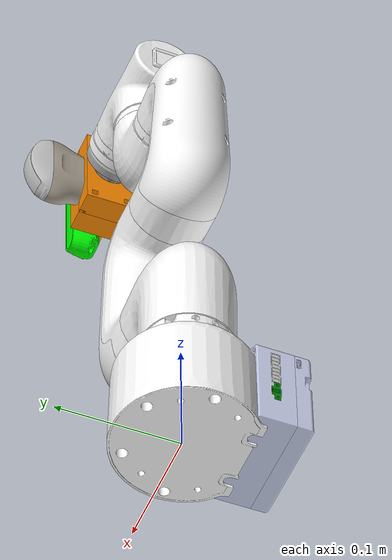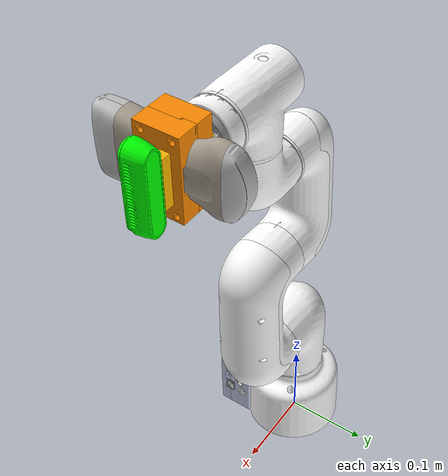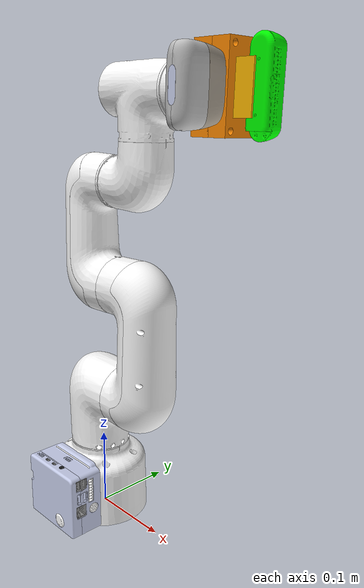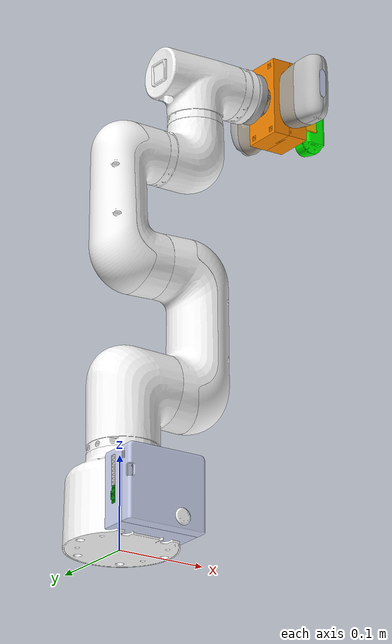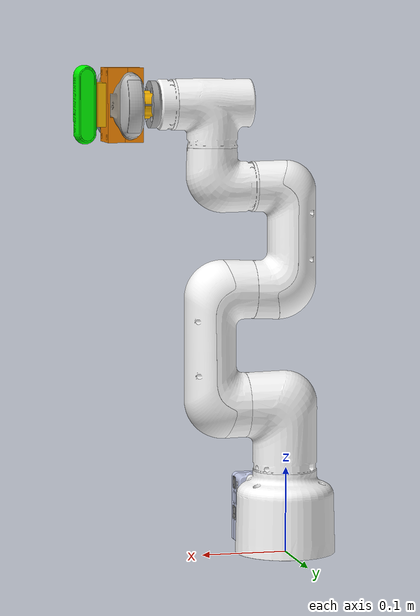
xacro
<?xml version="1.0"?>
<robot xmlns:xacro="http://www.ros.org/wiki/xacro" name="cobot_description">
    <xacro:arg name="initial_positions_file" default="initial_positions.yaml" />

    <!-- Import cobot_description urdf file -->
    <xacro:include filename="$(find cobot_description)/robot.urdf" />

    <!-- Import control_xacro -->
    <xacro:include filename="cobot_description.ros2_control.xacro" />

    <xacro:cobot_description_ros2_control name="FakeSystem" initial_positions_file="$(arg initial_positions_file)"/>

</robot>

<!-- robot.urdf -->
<!-- Generated using onshape-to-robot -->
<!-- Updated with realistic mass and physics properties for myCobot 320 Pi -->
<!-- Total mass: 3.3 kg | Payload: 1.0 kg | Working radius: 350 mm -->
<!-- Joint limits: J1-J5: ±165°, J6: ±175° -->
<!-- Servo stall torque: 4.5 kg·cm (0.441 N·m) @ 6V -->
<robot name="cobot_description">
  <!-- Link ground_link -->
  <link name="ground_link">
    <inertial>
      <origin xyz="6.59565e-05 -0.00516834 0.0507839" rpy="0 0 0"/>
      <mass value="1.200"/>
      <inertia ixx="0.002440" ixy="-9.01946e-08" ixz="-7.79986e-08" iyy="0.002440" iyz="4.7038e-05" izz="0.002880"/>
    </inertial>
    <!-- Part link_1 -->
    <visual>
      <origin xyz="-4.83452e-05 -0.00581885 0.0939" rpy="5.54959e-17 2.95734e-17 3.14159"/>
      <geometry>
        <mesh filename="package://assets/link_1.stl"/>
      </geometry>
      <material name="link_1_material">
        <color rgba="1 1 1 1"/>
      </material>
    </visual>
    <collision>
      <origin xyz="-4.83452e-05 -0.00581885 0.0939" rpy="5.54959e-17 2.95734e-17 3.14159"/>
      <geometry>
        <mesh filename="package://assets/link_1.stl"/>
      </geometry>
    </collision>
    <!-- Part w_pi模组 -->
    <visual>
      <origin xyz="-0.00055657 0.217894 0.10312" rpy="5.54959e-17 -2.59377e-17 -3.14159"/>
      <geometry>
        <mesh filename="package://assets/w_pi模组.stl"/>
      </geometry>
      <material name="w_pi模组_material">
        <color rgba="0.792157 0.819608 0.933333 1"/>
      </material>
    </visual>
    <collision>
      <origin xyz="-0.00055657 0.217894 0.10312" rpy="5.54959e-17 -2.59377e-17 -3.14159"/>
      <geometry>
        <mesh filename="package://assets/w_pi模组.stl"/>
      </geometry>
    </collision>
    <!-- Part w_pi模组_2 -->
    <visual>
      <origin xyz="0.000143428 0.217694 0.10312" rpy="5.54959e-17 -2.59377e-17 -3.14159"/>
      <geometry>
        <mesh filename="package://assets/w_pi模组__2.stl"/>
      </geometry>
      <material name="w_pi模组_2_material">
        <color rgba="0 0.541176 0.027451 1"/>
      </material>
    </visual>
    <collision>
      <origin xyz="0.000143428 0.217694 0.10312" rpy="5.54959e-17 -2.59377e-17 -3.14159"/>
      <geometry>
        <mesh filename="package://assets/w_pi模组__2.stl"/>
      </geometry>
    </collision>
    <!-- Part w_pi模组_3 -->
    <visual>
      <origin xyz="0.000764899 0.216504 0.102548" rpy="5.54959e-17 -2.59377e-17 -3.14159"/>
      <geometry>
        <mesh filename="package://assets/w_pi模组__3.stl"/>
      </geometry>
      <material name="w_pi模组_3_material">
        <color rgba="0.792157 0.819608 0.933333 1"/>
      </material>
    </visual>
    <collision>
      <origin xyz="0.000764899 0.216504 0.102548" rpy="5.54959e-17 -2.59377e-17 -3.14159"/>
      <geometry>
        <mesh filename="package://assets/w_pi模组__3.stl"/>
      </geometry>
    </collision>
    <!-- Part w_pi模组_4 -->
    <visual>
      <origin xyz="-5.65655e-05 0.217504 0.10332" rpy="5.68886e-17 -2.25793e-17 -3.14159"/>
      <geometry>
        <mesh filename="package://assets/w_pi模组__4.stl"/>
      </geometry>
      <material name="w_pi模组_4_material">
        <color rgba="0.14902 0.14902 0.14902 1"/>
      </material>
    </visual>
    <collision>
      <origin xyz="-5.65655e-05 0.217504 0.10332" rpy="5.68886e-17 -2.25793e-17 -3.14159"/>
      <geometry>
        <mesh filename="package://assets/w_pi模组__4.stl"/>
      </geometry>
    </collision>
    <!-- Part w_pi模组_5 -->
    <visual>
      <origin xyz="-0.000641694 0.217694 0.103118" rpy="5.54959e-17 -2.59377e-17 -3.14159"/>
      <geometry>
        <mesh filename="package://assets/w_pi模组__5.stl"/>
      </geometry>
      <material name="w_pi模组_5_material">
        <color rgba="1 1 1 1"/>
      </material>
    </visual>
    <collision>
      <origin xyz="-0.000641694 0.217694 0.103118" rpy="5.54959e-17 -2.59377e-17 -3.14159"/>
      <geometry>
        <mesh filename="package://assets/w_pi模组__5.stl"/>
      </geometry>
    </collision>
    <!-- Part w_pi模组_6 -->
    <visual>
      <origin xyz="0.000305428 0.217529 0.103164" rpy="5.68886e-17 -2.25793e-17 -3.14159"/>
      <geometry>
        <mesh filename="package://assets/w_pi模组__6.stl"/>
      </geometry>
      <material name="w_pi模组_6_material">
        <color rgba="1 1 1 1"/>
      </material>
    </visual>
    <collision>
      <origin xyz="0.000305428 0.217529 0.103164" rpy="5.68886e-17 -2.25793e-17 -3.14159"/>
      <geometry>
        <mesh filename="package://assets/w_pi模组__6.stl"/>
      </geometry>
    </collision>
    <!-- Part w_pi模组_7 -->
    <visual>
      <origin xyz="-5.65717e-05 0.217494 0.10312" rpy="5.54959e-17 -2.59377e-17 -3.14159"/>
      <geometry>
        <mesh filename="package://assets/w_pi模组__7.stl"/>
      </geometry>
      <material name="w_pi模组_7_material">
        <color rgba="0.792157 0.819608 0.933333 1"/>
      </material>
    </visual>
    <collision>
      <origin xyz="-5.65717e-05 0.217494 0.10312" rpy="5.54959e-17 -2.59377e-17 -3.14159"/>
      <geometry>
        <mesh filename="package://assets/w_pi模组__7.stl"/>
      </geometry>
    </collision>
    <!-- Part w_pi模组_8 -->
    <visual>
      <origin xyz="-0.000256571 0.217494 0.10312" rpy="-1.14798e-10 -8.70913e-09 -3.14159"/>
      <geometry>
        <mesh filename="package://assets/w_pi模组__8.stl"/>
      </geometry>
      <material name="w_pi模组_8_material">
        <color rgba="1 1 1 1"/>
      </material>
    </visual>
    <collision>
      <origin xyz="-0.000256571 0.217494 0.10312" rpy="-1.14798e-10 -8.70913e-09 -3.14159"/>
      <geometry>
        <mesh filename="package://assets/w_pi模组__8.stl"/>
      </geometry>
    </collision>
    <!-- Part w_pi模组_9 -->
    <visual>
      <origin xyz="-5.65655e-05 0.218004 0.103019" rpy="5.54959e-17 -2.59377e-17 -3.14159"/>
      <geometry>
        <mesh filename="package://assets/w_pi模组__9.stl"/>
      </geometry>
      <material name="w_pi模组_9_material">
        <color rgba="0.556863 0.556863 0.556863 1"/>
      </material>
    </visual>
    <collision>
      <origin xyz="-5.65655e-05 0.218004 0.103019" rpy="5.54959e-17 -2.59377e-17 -3.14159"/>
      <geometry>
        <mesh filename="package://assets/w_pi模组__9.stl"/>
      </geometry>
    </collision>
    <!-- Part w_pi模组_10 -->
    <visual>
      <origin xyz="-5.65655e-05 0.217494 0.10312" rpy="5.54959e-17 -2.59377e-17 -3.14159"/>
      <geometry>
        <mesh filename="package://assets/w_pi模组__10.stl"/>
      </geometry>
      <material name="w_pi模组_10_material">
        <color rgba="0.792157 0.819608 0.933333 1"/>
      </material>
    </visual>
    <collision>
      <origin xyz="-5.65655e-05 0.217494 0.10312" rpy="5.54959e-17 -2.59377e-17 -3.14159"/>
      <geometry>
        <mesh filename="package://assets/w_pi模组__10.stl"/>
      </geometry>
    </collision>
    <!-- Part w_pi模组_11 -->
    <visual>
      <origin xyz="-5.65656e-05 0.218004 0.103319" rpy="5.54959e-17 -2.59377e-17 -3.14159"/>
      <geometry>
        <mesh filename="package://assets/w_pi模组__11.stl"/>
      </geometry>
      <material name="w_pi模组_11_material">
        <color rgba="0.792157 0.819608 0.933333 1"/>
      </material>
    </visual>
    <collision>
      <origin xyz="-5.65656e-05 0.218004 0.103319" rpy="5.54959e-17 -2.59377e-17 -3.14159"/>
      <geometry>
        <mesh filename="package://assets/w_pi模组__11.stl"/>
      </geometry>
    </collision>
    <!-- Part w_pi模组_12 -->
    <visual>
      <origin xyz="0.000764899 0.21652 0.103384" rpy="5.54959e-17 -2.2302e-17 -3.14159"/>
      <geometry>
        <mesh filename="package://assets/w_pi模组__12.stl"/>
      </geometry>
      <material name="w_pi模组_12_material">
        <color rgba="0.792157 0.819608 0.933333 1"/>
      </material>
    </visual>
    <collision>
      <origin xyz="0.000764899 0.21652 0.103384" rpy="5.54959e-17 -2.2302e-17 -3.14159"/>
      <geometry>
        <mesh filename="package://assets/w_pi模组__12.stl"/>
      </geometry>
    </collision>
    <!-- Part w_pi模组_13 -->
    <visual>
      <origin xyz="-0.00055632 0.217704 0.10312" rpy="5.54959e-17 -2.59377e-17 -3.14159"/>
      <geometry>
        <mesh filename="package://assets/w_pi模组__13.stl"/>
      </geometry>
      <material name="w_pi模组_13_material">
        <color rgba="0.556863 0.556863 0.556863 1"/>
      </material>
    </visual>
    <collision>
      <origin xyz="-0.00055632 0.217704 0.10312" rpy="5.54959e-17 -2.59377e-17 -3.14159"/>
      <geometry>
        <mesh filename="package://assets/w_pi模组__13.stl"/>
      </geometry>
    </collision>
    <!-- Part w_pi模组_14 -->
    <visual>
      <origin xyz="-0.000356572 0.218004 0.10312" rpy="5.54959e-17 -2.59377e-17 -3.14159"/>
      <geometry>
        <mesh filename="package://assets/w_pi模组__14.stl"/>
      </geometry>
      <material name="w_pi模组_14_material">
        <color rgba="0.556863 0.556863 0.556863 1"/>
      </material>
    </visual>
    <collision>
      <origin xyz="-0.000356572 0.218004 0.10312" rpy="5.54959e-17 -2.59377e-17 -3.14159"/>
      <geometry>
        <mesh filename="package://assets/w_pi模组__14.stl"/>
      </geometry>
    </collision>
    <!-- Part w_pi模组_15 -->
    <visual>
      <origin xyz="-5.64093e-05 0.217844 0.102619" rpy="5.54959e-17 -2.59377e-17 -3.14159"/>
      <geometry>
        <mesh filename="package://assets/w_pi模组__15.stl"/>
      </geometry>
      <material name="w_pi模组_15_material">
        <color rgba="0.792157 0.819608 0.933333 1"/>
      </material>
    </visual>
    <collision>
      <origin xyz="-5.64093e-05 0.217844 0.102619" rpy="5.54959e-17 -2.59377e-17 -3.14159"/>
      <geometry>
        <mesh filename="package://assets/w_pi模组__15.stl"/>
      </geometry>
    </collision>
    <!-- Part w_pi模组_16 -->
    <visual>
      <origin xyz="-5.65654e-05 0.218004 0.103019" rpy="5.54959e-17 -2.59377e-17 -3.14159"/>
      <geometry>
        <mesh filename="package://assets/w_pi模组__16.stl"/>
      </geometry>
      <material name="w_pi模组_16_material">
        <color rgba="0.556863 0.556863 0.556863 1"/>
      </material>
    </visual>
    <collision>
      <origin xyz="-5.65654e-05 0.218004 0.103019" rpy="5.54959e-17 -2.59377e-17 -3.14159"/>
      <geometry>
        <mesh filename="package://assets/w_pi模组__16.stl"/>
      </geometry>
    </collision>
    <!-- Part w_pi模组_17 -->
    <visual>
      <origin xyz="-5.65655e-05 0.217494 0.10312" rpy="5.54959e-17 -2.59377e-17 -3.14159"/>
      <geometry>
        <mesh filename="package://assets/w_pi模组__17.stl"/>
      </geometry>
      <material name="w_pi模组_17_material">
        <color rgba="1 1 1 1"/>
      </material>
    </visual>
    <collision>
      <origin xyz="-5.65655e-05 0.217494 0.10312" rpy="5.54959e-17 -2.59377e-17 -3.14159"/>
      <geometry>
        <mesh filename="package://assets/w_pi模组__17.stl"/>
      </geometry>
    </collision>
  </link>
  <!-- Link link_2 -->
  <link name="link_2">
    <inertial>
      <origin xyz="-0.0263573 4.42505e-05 0.0684416" rpy="0 0 0"/>
      <mass value="0.650"/>
      <inertia ixx="0.001109" ixy="7.46984e-07" ixz="0.000240683" iyy="0.001109" iyz="-1.51016e-08" izz="0.000658"/>
    </inertial>
    <!-- Part link_2 -->
    <visual>
      <origin xyz="0 8.67362e-19 0.0009" rpy="1.5708 -5.32294e-20 -0.00383539"/>
      <geometry>
        <mesh filename="package://assets/link_2.stl"/>
      </geometry>
      <material name="link_2_material">
        <color rgba="1 1 1 1"/>
      </material>
    </visual>
    <collision>
      <origin xyz="0 8.67362e-19 0.0009" rpy="1.5708 -5.32294e-20 -0.00383539"/>
      <geometry>
        <mesh filename="package://assets/link_2.stl"/>
      </geometry>
    </collision>
  </link>
  <!-- Link link_3 -->
  <link name="link_3">
    <inertial>
      <origin xyz="0 0 0" rpy="0 0 0"/>
      <mass value="0.550"/>
      <inertia ixx="0.000995" ixy="0" ixz="0" iyy="0.000995" iyz="0" izz="0.000440"/>
    </inertial>
    <!-- Part w_j3部分 -->
    <visual>
      <origin xyz="8.67362e-19 0 -0.00841215" rpy="3.14159 -2.07297e-19 -5.85828e-33"/>
      <geometry>
        <mesh filename="package://assets/w_j3部分.stl"/>
      </geometry>
      <material name="w_j3部分_material">
        <color rgba="1 1 1 1"/>
      </material>
    </visual>
    <collision>
      <origin xyz="8.67362e-19 0 -0.00841215" rpy="3.14159 -2.07297e-19 -5.85828e-33"/>
      <geometry>
        <mesh filename="package://assets/w_j3部分.stl"/>
      </geometry>
    </collision>
    <!-- Part w_j3部分_2 -->
    <visual>
      <origin xyz="1.35083e-06 -6.88061e-05 -0.00841155" rpy="3.14159 1.55736e-07 1.11967e-05"/>
      <geometry>
        <mesh filename="package://assets/w_j3部分__2.stl"/>
      </geometry>
      <material name="w_j3部分_2_material">
        <color rgba="1 1 1 1"/>
      </material>
    </visual>
    <collision>
      <origin xyz="1.35083e-06 -6.88061e-05 -0.00841155" rpy="3.14159 1.55736e-07 1.11967e-05"/>
      <geometry>
        <mesh filename="package://assets/w_j3部分__2.stl"/>
      </geometry>
    </collision>
  </link>
  <!-- Link link_4 -->
  <link name="link_4">
    <inertial>
      <origin xyz="0 0 0" rpy="0 0 0"/>
      <mass value="0.400"/>
      <inertia ixx="0.000456" ixy="0" ixz="0" iyy="0.000456" iyz="0" izz="0.000245"/>
    </inertial>
    <!-- Part w_j4部分 -->
    <visual>
      <origin xyz="0 -5.55112e-17 0.0011" rpy="-1.34515e-21 -3.87262e-19 1.06515e-18"/>
      <geometry>
        <mesh filename="package://assets/w_j4部分.stl"/>
      </geometry>
      <material name="w_j4部分_material">
        <color rgba="1 1 1 1"/>
      </material>
    </visual>
    <collision>
      <origin xyz="0 -5.55112e-17 0.0011" rpy="-1.34515e-21 -3.87262e-19 1.06515e-18"/>
      <geometry>
        <mesh filename="package://assets/w_j4部分.stl"/>
      </geometry>
    </collision>
    <!-- Part w_j4部分_2 -->
    <visual>
      <origin xyz="0 -5.55112e-17 0.0011" rpy="2.02007e-16 -3.5558e-16 5.57083e-17"/>
      <geometry>
        <mesh filename="package://assets/w_j4部分__2.stl"/>
      </geometry>
      <material name="w_j4部分_2_material">
        <color rgba="1 1 1 1"/>
      </material>
    </visual>
    <collision>
      <origin xyz="0 -5.55112e-17 0.0011" rpy="2.02007e-16 -3.5558e-16 5.57083e-17"/>
      <geometry>
        <mesh filename="package://assets/w_j4部分__2.stl"/>
      </geometry>
    </collision>
  </link>
  <!-- Link link_5 -->
  <link name="link_5">
    <inertial>
      <origin xyz="0.000237654 0.0167025 -0.0368644" rpy="0 0 0"/>
      <mass value="0.300"/>
      <inertia ixx="0.000294" ixy="5.45694e-07" ixz="2.83676e-06" iyy="0.000294" iyz="0.000226328" izz="0.000184"/>
    </inertial>
    <!-- Part link_5 -->
    <visual>
      <origin xyz="0 0.048 -0.0497" rpy="-1.5708 -7.59973e-19 9.9229e-19"/>
      <geometry>
        <mesh filename="package://assets/link_5.stl"/>
      </geometry>
      <material name="link_5_material">
        <color rgba="1 1 1 1"/>
      </material>
    </visual>
    <collision>
      <origin xyz="0 0.048 -0.0497" rpy="-1.5708 -7.59973e-19 9.9229e-19"/>
      <geometry>
        <mesh filename="package://assets/link_5.stl"/>
      </geometry>
    </collision>
  </link>
  <!-- Link link_6 -->
  <link name="link_6">
    <inertial>
      <origin xyz="0 0 0" rpy="0 0 0"/>
      <mass value="0.120"/>
      <inertia ixx="0.000063" ixy="0" ixz="0" iyy="0.000063" iyz="0" izz="0.000054"/>
    </inertial>
    <!-- Part w_j6部分 -->
    <visual>
      <origin xyz="-0.000217025 0.0453247 -0.0512343" rpy="-1.58825 -1.10159e-05 1.92283e-07"/>
      <geometry>
        <mesh filename="package://assets/w_j6部分.stl"/>
      </geometry>
      <material name="w_j6部分_material">
        <color rgba="1 1 1 1"/>
      </material>
    </visual>
    <collision>
      <origin xyz="-0.000217025 0.0453247 -0.0512343" rpy="-1.58825 -1.10159e-05 1.92283e-07"/>
      <geometry>
        <mesh filename="package://assets/w_j6部分.stl"/>
      </geometry>
    </collision>
    <!-- Part w_j6部分_2 -->
    <visual>
      <origin xyz="1.32037e-07 0.0457608 -0.0510247" rpy="-1.58825 -1.10159e-05 1.92283e-07"/>
      <geometry>
        <mesh filename="package://assets/w_j6部分__2.stl"/>
      </geometry>
      <material name="w_j6部分_2_material">
        <color rgba="1 1 1 1"/>
      </material>
    </visual>
    <collision>
      <origin xyz="1.32037e-07 0.0457608 -0.0510247" rpy="-1.58825 -1.10159e-05 1.92283e-07"/>
      <geometry>
        <mesh filename="package://assets/w_j6部分__2.stl"/>
      </geometry>
    </collision>
    <!-- Part w_j6部分_3 -->
    <visual>
      <origin xyz="0.0121776 0.0473685 -0.0508674" rpy="-1.58796 -0.00316572 -0.181732"/>
      <geometry>
        <mesh filename="package://assets/w_j6部分__3.stl"/>
      </geometry>
      <material name="w_j6部分_3_material">
        <color rgba="1 1 1 1"/>
      </material>
    </visual>
    <collision>
      <origin xyz="0.0121776 0.0473685 -0.0508674" rpy="-1.58796 -0.00316572 -0.181732"/>
      <geometry>
        <mesh filename="package://assets/w_j6部分__3.stl"/>
      </geometry>
    </collision>
    <!-- Part w_j6部分_4 -->
    <visual>
      <origin xyz="1.73472e-18 0.048 -0.0497" rpy="-1.5708 2.02804e-19 7.77378e-19"/>
      <geometry>
        <mesh filename="package://assets/w_j6部分__4.stl"/>
      </geometry>
      <material name="w_j6部分_4_material">
        <color rgba="1 1 1 1"/>
      </material>
    </visual>
    <collision>
      <origin xyz="1.73472e-18 0.048 -0.0497" rpy="-1.5708 2.02804e-19 7.77378e-19"/>
      <geometry>
        <mesh filename="package://assets/w_j6部分__4.stl"/>
      </geometry>
    </collision>
  </link>
  <!-- Link w_j6 -->
  <link name="w_j6">
    <inertial>
      <origin xyz="0 0 0" rpy="0 0 0"/>
      <mass value="0.080"/>
      <inertia ixx="0.000023" ixy="0" ixz="0" iyy="0.000023" iyz="0" izz="0.000025"/>
    </inertial>
    <!-- Part w_j6 -->
    <visual>
      <origin xyz="3.46945e-18 1.11022e-16 -0.0192" rpy="-1.5708 8.00774e-19 2.38352e-18"/>
      <geometry>
        <mesh filename="package://assets/w_j6.stl"/>
      </geometry>
      <material name="w_j6_material">
        <color rgba="1 1 1 1"/>
      </material>
    </visual>
    <collision>
      <origin xyz="3.46945e-18 1.11022e-16 -0.0192" rpy="-1.5708 8.00774e-19 2.38352e-18"/>
      <geometry>
        <mesh filename="package://assets/w_j6.stl"/>
      </geometry>
    </collision>
    <!-- Part part_2 -->
    <visual>
      <origin xyz="-6.93889e-18 0 -0.0222" rpy="-3.14159 7.35327e-15 1.5708"/>
      <geometry>
        <mesh filename="package://assets/part_2.stl"/>
      </geometry>
      <material name="part_2_material">
        <color rgba="0.980392 0.713725 0.00392157 1"/>
      </material>
    </visual>
    <collision>
      <origin xyz="-6.93889e-18 0 -0.0222" rpy="-3.14159 7.35327e-15 1.5708"/>
      <geometry>
        <mesh filename="package://assets/part_2.stl"/>
      </geometry>
    </collision>
    <!-- Part defeatured -->
    <visual>
      <origin xyz="-3.46945e-17 0 -0.0222" rpy="-3.14159 -3.45555e-18 1.5708"/>
      <geometry>
        <mesh filename="package://assets/defeatured.stl"/>
      </geometry>
      <material name="defeatured_material">
        <color rgba="0.647059 0.647059 0.647059 1"/>
      </material>
    </visual>
    <collision>
      <origin xyz="-3.46945e-17 0 -0.0222" rpy="-3.14159 -3.45555e-18 1.5708"/>
      <geometry>
        <mesh filename="package://assets/defeatured.stl"/>
      </geometry>
    </collision>
    <!-- Part bottom -->
    <visual>
      <origin xyz="-6.245e-17 -5.55112e-16 -0.0631236" rpy="1.5708 -7.37192e-15 -1.5708"/>
      <geometry>
        <mesh filename="package://assets/bottom.stl"/>
      </geometry>
      <material name="bottom_material">
        <color rgba="0.972549 0.529412 0.00392157 1"/>
      </material>
    </visual>
    <collision>
      <origin xyz="-6.245e-17 -5.55112e-16 -0.0631236" rpy="1.5708 -7.37192e-15 -1.5708"/>
      <geometry>
        <mesh filename="package://assets/bottom.stl"/>
      </geometry>
    </collision>
    <!-- Part top -->
    <visual>
      <origin xyz="-6.245e-17 -5.55112e-16 -0.0631236" rpy="1.5708 -7.37192e-15 -1.5708"/>
      <geometry>
        <mesh filename="package://assets/top.stl"/>
      </geometry>
      <material name="top_material">
        <color rgba="0.972549 0.529412 0.00392157 1"/>
      </material>
    </visual>
    <collision>
      <origin xyz="-6.245e-17 -5.55112e-16 -0.0631236" rpy="1.5708 -7.37192e-15 -1.5708"/>
      <geometry>
        <mesh filename="package://assets/top.stl"/>
      </geometry>
    </collision>
    <!-- Part part_3 -->
    <visual>
      <origin xyz="-6.245e-17 -5.55112e-16 -0.0631236" rpy="1.5708 -7.37192e-15 -1.5708"/>
      <geometry>
        <mesh filename="package://assets/part_3.stl"/>
      </geometry>
      <material name="part_3_material">
        <color rgba="0.498039 0.498039 0.498039 1"/>
      </material>
    </visual>
    <collision>
      <origin xyz="-6.245e-17 -5.55112e-16 -0.0631236" rpy="1.5708 -7.37192e-15 -1.5708"/>
      <geometry>
        <mesh filename="package://assets/part_3.stl"/>
      </geometry>
    </collision>
    <!-- Part cameramount -->
    <visual>
      <origin xyz="-6.245e-17 -5.55112e-16 -0.0631236" rpy="1.5708 -7.37192e-15 -1.5708"/>
      <geometry>
        <mesh filename="package://assets/cameramount.stl"/>
      </geometry>
      <material name="cameramount_material">
        <color rgba="0.980392 0.713725 0.00392157 1"/>
      </material>
    </visual>
    <collision>
      <origin xyz="-6.245e-17 -5.55112e-16 -0.0631236" rpy="1.5708 -7.37192e-15 -1.5708"/>
      <geometry>
        <mesh filename="package://assets/cameramount.stl"/>
      </geometry>
    </collision>
    <!-- Part hd3_grip -->
    <visual>
      <origin xyz="-0.000374797 -3.33067e-16 -0.0620646" rpy="1.52382 -7.37084e-15 -1.5708"/>
      <geometry>
        <mesh filename="package://assets/hd3_grip.stl"/>
      </geometry>
      <material name="hd3_grip_material">
        <color rgba="0.658824 0.619608 0.560784 1"/>
      </material>
    </visual>
    <collision>
      <origin xyz="-0.000374797 -3.33067e-16 -0.0620646" rpy="1.52382 -7.37084e-15 -1.5708"/>
      <geometry>
        <mesh filename="package://assets/hd3_grip.stl"/>
      </geometry>
    </collision>
    <!-- Part c3_assy -->
    <visual>
      <origin xyz="-0.000374797 -3.33067e-16 -0.0620646" rpy="1.52382 -7.37084e-15 -1.5708"/>
      <geometry>
        <mesh filename="package://assets/c3_assy.stl"/>
      </geometry>
      <material name="c3_assy_material">
        <color rgba="0.752941 0.752941 0.752941 1"/>
      </material>
    </visual>
    <collision>
      <origin xyz="-0.000374797 -3.33067e-16 -0.0620646" rpy="1.52382 -7.37084e-15 -1.5708"/>
      <geometry>
        <mesh filename="package://assets/c3_assy.stl"/>
      </geometry>
    </collision>
    <!-- Part hd3_main_assy_marketing -->
    <visual>
      <origin xyz="-0.000374797 -3.33067e-16 -0.0620646" rpy="1.52382 -7.37084e-15 -1.5708"/>
      <geometry>
        <mesh filename="package://assets/hd3_main_assy_marketing.stl"/>
      </geometry>
      <material name="hd3_main_assy_marketing_material">
        <color rgba="0.752941 0.752941 0.752941 1"/>
      </material>
    </visual>
    <collision>
      <origin xyz="-0.000374797 -3.33067e-16 -0.0620646" rpy="1.52382 -7.37084e-15 -1.5708"/>
      <geometry>
        <mesh filename="package://assets/hd3_main_assy_marketing.stl"/>
      </geometry>
    </collision>
    <!-- Part c3_assy_2 -->
    <visual>
      <origin xyz="-0.000374797 -3.33067e-16 -0.0620646" rpy="1.52382 -7.37084e-15 -1.5708"/>
      <geometry>
        <mesh filename="package://assets/c3_assy__2.stl"/>
      </geometry>
      <material name="c3_assy_2_material">
        <color rgba="0.752941 0.752941 0.752941 1"/>
      </material>
    </visual>
    <collision>
      <origin xyz="-0.000374797 -3.33067e-16 -0.0620646" rpy="1.52382 -7.37084e-15 -1.5708"/>
      <geometry>
        <mesh filename="package://assets/c3_assy__2.stl"/>
      </geometry>
    </collision>
    <!-- Part hd3_main_assy_marketing_2 -->
    <visual>
      <origin xyz="-0.000374797 -3.33067e-16 -0.0620646" rpy="1.52382 -7.37084e-15 -1.5708"/>
      <geometry>
        <mesh filename="package://assets/hd3_main_assy_marketing_2.stl"/>
      </geometry>
      <material name="hd3_main_assy_marketing_2_material">
        <color rgba="0.752941 0.752941 0.752941 1"/>
      </material>
    </visual>
    <collision>
      <origin xyz="-0.000374797 -3.33067e-16 -0.0620646" rpy="1.52382 -7.37084e-15 -1.5708"/>
      <geometry>
        <mesh filename="package://assets/hd3_main_assy_marketing_2.stl"/>
      </geometry>
    </collision>
    <!-- Part hd3_target_connector -->
    <visual>
      <origin xyz="-0.000374797 -3.33067e-16 -0.0620646" rpy="1.52382 -7.37084e-15 -1.5708"/>
      <geometry>
        <mesh filename="package://assets/hd3_target_connector.stl"/>
      </geometry>
      <material name="hd3_target_connector_material">
        <color rgba="0.792157 0.819608 0.933333 1"/>
      </material>
    </visual>
    <collision>
      <origin xyz="-0.000374797 -3.33067e-16 -0.0620646" rpy="1.52382 -7.37084e-15 -1.5708"/>
      <geometry>
        <mesh filename="package://assets/hd3_target_connector.stl"/>
      </geometry>
    </collision>
    <!-- Part hd3_lightpipe -->
    <visual>
      <origin xyz="-0.000374797 -3.33067e-16 -0.0620646" rpy="1.52382 -7.37084e-15 -1.5708"/>
      <geometry>
        <mesh filename="package://assets/hd3_lightpipe.stl"/>
      </geometry>
      <material name="hd3_lightpipe_material">
        <color rgba="0.792157 0.819608 0.933333 1"/>
      </material>
    </visual>
    <collision>
      <origin xyz="-0.000374797 -3.33067e-16 -0.0620646" rpy="1.52382 -7.37084e-15 -1.5708"/>
      <geometry>
        <mesh filename="package://assets/hd3_lightpipe.stl"/>
      </geometry>
    </collision>
    <!-- Part part_1 -->
    <visual>
      <origin xyz="-0.0149 -6.66134e-16 -0.10326" rpy="-1.5708 7.36408e-15 1.5708"/>
      <geometry>
        <mesh filename="package://assets/part_1.stl"/>
      </geometry>
      <material name="part_1_material">
        <color rgba="0 1 0 1"/>
      </material>
    </visual>
    <collision>
      <origin xyz="-0.0149 -6.66134e-16 -0.10326" rpy="-1.5708 7.36408e-15 1.5708"/>
      <geometry>
        <mesh filename="package://assets/part_1.stl"/>
      </geometry>
    </collision>
    <!-- Part part_2_2 -->
    <visual>
      <origin xyz="-0.0149 -6.66134e-16 -0.10326" rpy="-1.5708 7.36408e-15 1.5708"/>
      <geometry>
        <mesh filename="package://assets/part_2__2.stl"/>
      </geometry>
      <material name="part_2_2_material">
        <color rgba="0 1 0 1"/>
      </material>
    </visual>
    <collision>
      <origin xyz="-0.0149 -6.66134e-16 -0.10326" rpy="-1.5708 7.36408e-15 1.5708"/>
      <geometry>
        <mesh filename="package://assets/part_2__2.stl"/>
      </geometry>
    </collision>
  </link>
  <!-- Joint from link_6 to w_j6 -->
  <joint name="joint6output_to_joint6" type="revolute">
    <origin xyz="2.08167e-17 0.045 -0.0497" rpy="-1.5708 0.00892376 -3.14159"/>
    <parent link="link_6"/>
    <child link="w_j6"/>
    <axis xyz="0 0 1"/>
    <limit effort="0.8" velocity="3.0" lower="-3.05433" upper="3.05433"/>
    <dynamics damping="0.05" friction="0.02"/>
  </joint>
  <!-- Joint from link_5 to link_6 -->
  <joint name="joint6_to_joint5" type="revolute">
    <origin xyz="5.56829e-08 0.045 -0.0495147" rpy="-1.5708 -0.0123971 3.14159"/>
    <parent link="link_5"/>
    <child link="link_6"/>
    <axis xyz="0 0 1"/>
    <limit effort="1.0" velocity="3.0" lower="-2.87979" upper="2.87979"/>
    <dynamics damping="0.05" friction="0.02"/>
  </joint>
  <!-- Joint from link_4 to link_5 -->
  <joint name="joint5_to_joint4" type="revolute">
    <origin xyz="0 0.12 -0.0019" rpy="-3.14159 4.4691e-16 3.12542"/>
    <parent link="link_4"/>
    <child link="link_5"/>
    <axis xyz="0 0 1"/>
    <limit effort="1.5" velocity="3.0" lower="-2.87979" upper="2.87979"/>
    <dynamics damping="0.05" friction="0.02"/>
  </joint>
  <!-- Joint from link_3 to link_4 -->
  <joint name="joint4_to_joint3" type="revolute">
    <origin xyz="8.76035e-17 -0.134451 -0.00841215" rpy="1.18179e-15 4.67706e-15 -3.1366"/>
    <parent link="link_3"/>
    <child link="link_4"/>
    <axis xyz="0 0 1"/>
    <limit effort="2.0" velocity="3.0" lower="-2.87979" upper="2.87979"/>
    <dynamics damping="0.05" friction="0.02"/>
  </joint>
  <!-- Joint from link_2 to link_3 -->
  <joint name="joint3_to_joint2" type="revolute">
    <origin xyz="-0.0479996 0.000184098 0.0784" rpy="-1.5708 1.09784e-16 1.56696"/>
    <parent link="link_2"/>
    <child link="link_3"/>
    <axis xyz="0 0 1"/>
    <limit effort="2.5" velocity="3.0" lower="-2.87979" upper="2.87979"/>
    <dynamics damping="0.05" friction="0.02"/>
  </joint>
  <!-- Joint from ground_link to link_2 -->
  <joint name="joint2_to_joint1" type="revolute">
    <origin xyz="-4.83452e-05 -0.00581885 0.0964" rpy="7.20701e-22 6.12328e-17 3.14159"/>
    <parent link="ground_link"/>
    <child link="link_2"/>
    <axis xyz="0 0 1"/>
    <limit effort="3.0" velocity="3.0" lower="-2.87979" upper="2.87979"/>
    <dynamics damping="0.05" friction="0.02"/>
  </joint>
</robot>
